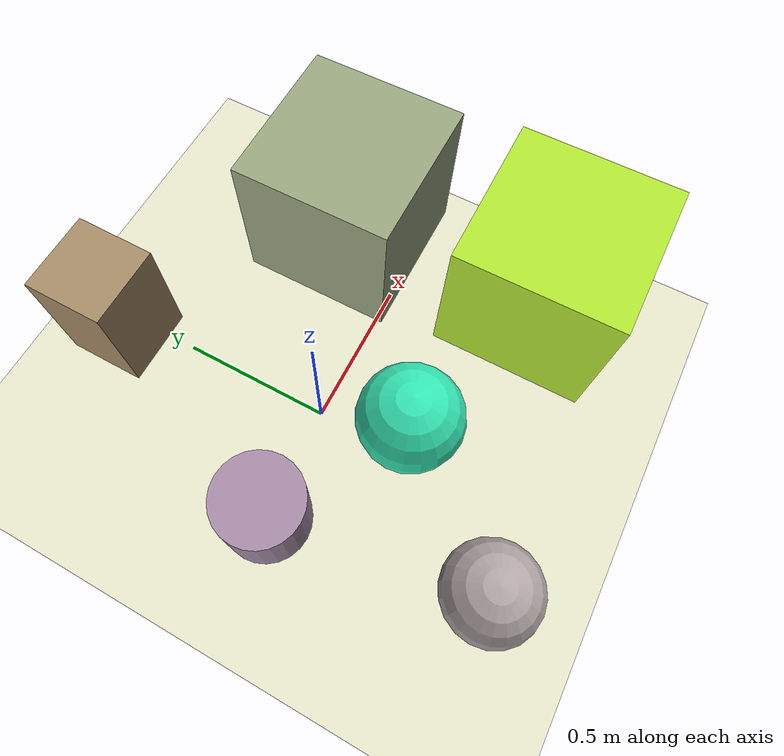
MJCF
<mujoco>
   <asset>
<texture type="skybox" builtin="gradient" rgb1="0.8 0.1 0.7" rgb2="0.7 0.8 0.2" width="256" height="256"/>
<texture name="flat_0" builtin="flat" rgb1="0.2 0.9 0.7" rgb2="0.2 0.9 0.7"  width="200" height="200"/>
<texture name="gradient_1" builtin="gradient" rgb1="0.8 0.7 0.2" rgb2="0.5 0.4 0.6" width="200" height="200"/>
<texture name="checker_2" builtin="checker" type="2d" rgb1="0.4 0.7 0.4" rgb2="0.9 0.4 0.9" width="200" height="200"/>
<texture name="checker_3" builtin="checker" type="2d" rgb1="1.0 0.6 0.8" rgb2="0.4 0.7 0.5" width="200" height="200"/>
<texture name="checker_4" builtin="checker" type="2d" rgb1="0.3 0.9 0.8" rgb2="0.9 0.4 0.2" width="200" height="200"/>
<texture name="flat_5" builtin="flat" rgb1="0.7 0.9 0.2" rgb2="0.7 0.9 0.2"  width="200" height="200"/><material name="flat_0_mat" reflectance="0" texture="flat_0" texuniform="true"/>
<material name="gradient_1_mat" reflectance="0" texture="gradient_1" texuniform="true"/>
<material name="checker_2_mat" reflectance="0" texrepeat="3 3" texture="checker_2" texuniform="false" />
<material name="checker_3_mat" reflectance="0" texrepeat="8 8" texture="checker_3" texuniform="false" />
<material name="checker_4_mat" reflectance="0" texrepeat="7 7" texture="checker_4" texuniform="false" />
<material name="flat_5_mat" reflectance="0" texture="flat_5" texuniform="true"/>
   </asset>

   <worldbody>
      <light diffuse=".9 .9 .9" pos="0 0 3" dir="0 0 -1"/>
     <geom type="plane" size="1 1 0.1" rgba="0.9 0.9 0.8 1"/>
<geom type="sphere" pos="0.07 -0.28 0.17" size="0.17 0.17 0.17" material="flat_0_mat" />
<geom type="box" pos="-0.05 0.73 0.21" size="0.13 0.13 0.21" material="gradient_1_mat" />
<geom type="cylinder" pos="-0.37 -0.02 0.13" size="0.14 0.13 0.13" material="checker_2_mat" />
<geom type="sphere" pos="-0.27 -0.7 0.15" size="0.15 0.15 0.15" material="checker_3_mat" />
<geom type="box" pos="0.65 0.24 0.26" size="0.26 0.26 0.26" material="checker_4_mat" />
<geom type="box" pos="0.69 -0.46 0.26" size="0.26 0.26 0.26" material="flat_5_mat" /><camera euler="60 0 180" fovy="60" name="camera_a" pos="0 -1.5 1"></camera>   </worldbody>
</mujoco>
